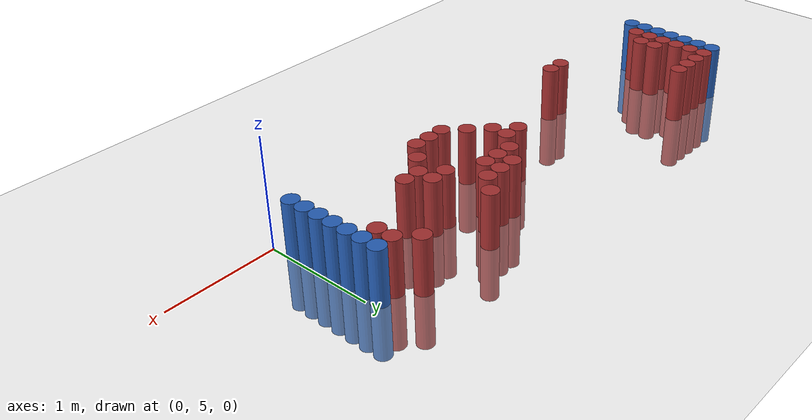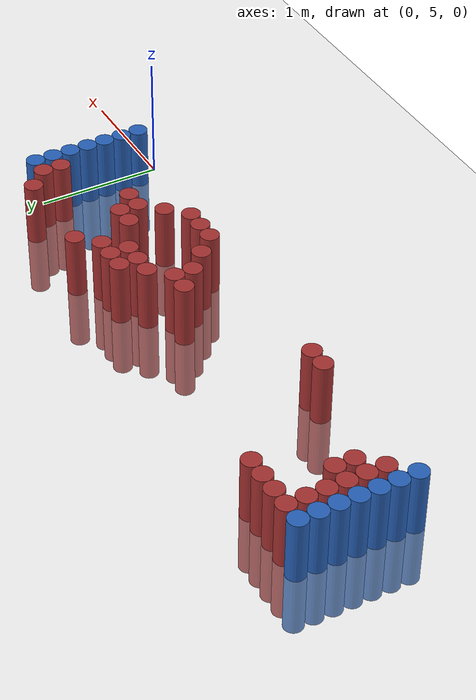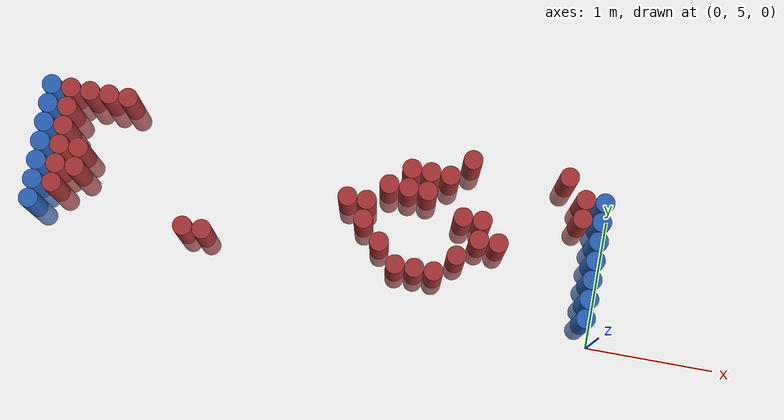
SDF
<sdf version="1.6">
 <world name="default">
  <model name="ground_plane">
   <static>1</static>
   <link name="link">
    <collision name="collision">
     <geometry><plane><normal>0 0 1</normal><size>100 100</size></plane></geometry>
     <surface><friction><ode><mu>100</mu><mu2>50</mu2></ode></friction></surface>
    </collision>
    <visual name="visual">
     <cast_shadows>0</cast_shadows>
     <geometry><plane><normal>0 0 1</normal><size>100 100</size></plane></geometry>
     <material>
      <script><uri>file://media/materials/scripts/gazebo.material</uri><name>Gazebo/Grey</name></script>
     </material>
    </visual>
   </link>
  </model>
  <model name="unit_cylinder_97">
   <static>1</static>
   <pose>-4.425000 5.325000 0.000000 0.000000 0.000000 0.000000</pose>
   <link name="link">
    <inertial>
     <mass>1</mass>
     <inertia><ixx>0.145833</ixx><ixy>0</ixy><ixz>0</ixz><iyy>0.145833</iyy><iyz>0</iyz><izz>0.125</izz></inertia>
    </inertial>
    <collision name="collision">
     <geometry><cylinder><radius>0.075000</radius><length>1</length></cylinder></geometry>
    </collision>
    <visual name="visual">
     <geometry><cylinder><radius>0.075000</radius><length>1</length></cylinder></geometry>
     <material>
      <ambient>0.152000 0.379000 0.720000 1</ambient>
      <diffuse>0.152000 0.379000 0.720000 1</diffuse>
     </material>
     <material>
      <script><name>Gazebo/Grey</name><uri>file://media/materials/scripts/gazebo.material</uri></script>
     </material>
    </visual>
   </link>
  </model>
  <model name="unit_cylinder_98">
   <static>1</static>
   <pose>-4.425000 5.475000 0.000000 0.000000 0.000000 0.000000</pose>
   <link name="link">
    <inertial>
     <mass>1</mass>
     <inertia><ixx>0.145833</ixx><ixy>0</ixy><ixz>0</ixz><iyy>0.145833</iyy><iyz>0</iyz><izz>0.125</izz></inertia>
    </inertial>
    <collision name="collision">
     <geometry><cylinder><radius>0.075000</radius><length>1</length></cylinder></geometry>
    </collision>
    <visual name="visual">
     <geometry><cylinder><radius>0.075000</radius><length>1</length></cylinder></geometry>
     <material>
      <ambient>0.152000 0.379000 0.720000 1</ambient>
      <diffuse>0.152000 0.379000 0.720000 1</diffuse>
     </material>
     <material>
      <script><name>Gazebo/Grey</name><uri>file://media/materials/scripts/gazebo.material</uri></script>
     </material>
    </visual>
   </link>
  </model>
  <model name="unit_cylinder_99">
   <static>1</static>
   <pose>-4.425000 5.625000 0.000000 0.000000 0.000000 0.000000</pose>
   <link name="link">
    <inertial>
     <mass>1</mass>
     <inertia><ixx>0.145833</ixx><ixy>0</ixy><ixz>0</ixz><iyy>0.145833</iyy><iyz>0</iyz><izz>0.125</izz></inertia>
    </inertial>
    <collision name="collision">
     <geometry><cylinder><radius>0.075000</radius><length>1</length></cylinder></geometry>
    </collision>
    <visual name="visual">
     <geometry><cylinder><radius>0.075000</radius><length>1</length></cylinder></geometry>
     <material>
      <ambient>0.152000 0.379000 0.720000 1</ambient>
      <diffuse>0.152000 0.379000 0.720000 1</diffuse>
     </material>
     <material>
      <script><name>Gazebo/Grey</name><uri>file://media/materials/scripts/gazebo.material</uri></script>
     </material>
    </visual>
   </link>
  </model>
  <model name="unit_cylinder_100">
   <static>1</static>
   <pose>-4.425000 5.775000 0.000000 0.000000 0.000000 0.000000</pose>
   <link name="link">
    <inertial>
     <mass>1</mass>
     <inertia><ixx>0.145833</ixx><ixy>0</ixy><ixz>0</ixz><iyy>0.145833</iyy><iyz>0</iyz><izz>0.125</izz></inertia>
    </inertial>
    <collision name="collision">
     <geometry><cylinder><radius>0.075000</radius><length>1</length></cylinder></geometry>
    </collision>
    <visual name="visual">
     <geometry><cylinder><radius>0.075000</radius><length>1</length></cylinder></geometry>
     <material>
      <ambient>0.152000 0.379000 0.720000 1</ambient>
      <diffuse>0.152000 0.379000 0.720000 1</diffuse>
     </material>
     <material>
      <script><name>Gazebo/Grey</name><uri>file://media/materials/scripts/gazebo.material</uri></script>
     </material>
    </visual>
   </link>
  </model>
  <model name="unit_cylinder_101">
   <static>1</static>
   <pose>-4.425000 5.925000 0.000000 0.000000 0.000000 0.000000</pose>
   <link name="link">
    <inertial>
     <mass>1</mass>
     <inertia><ixx>0.145833</ixx><ixy>0</ixy><ixz>0</ixz><iyy>0.145833</iyy><iyz>0</iyz><izz>0.125</izz></inertia>
    </inertial>
    <collision name="collision">
     <geometry><cylinder><radius>0.075000</radius><length>1</length></cylinder></geometry>
    </collision>
    <visual name="visual">
     <geometry><cylinder><radius>0.075000</radius><length>1</length></cylinder></geometry>
     <material>
      <ambient>0.152000 0.379000 0.720000 1</ambient>
      <diffuse>0.152000 0.379000 0.720000 1</diffuse>
     </material>
     <material>
      <script><name>Gazebo/Grey</name><uri>file://media/materials/scripts/gazebo.material</uri></script>
     </material>
    </visual>
   </link>
  </model>
  <model name="unit_cylinder_102">
   <static>1</static>
   <pose>-4.425000 6.075000 0.000000 0.000000 0.000000 0.000000</pose>
   <link name="link">
    <inertial>
     <mass>1</mass>
     <inertia><ixx>0.145833</ixx><ixy>0</ixy><ixz>0</ixz><iyy>0.145833</iyy><iyz>0</iyz><izz>0.125</izz></inertia>
    </inertial>
    <collision name="collision">
     <geometry><cylinder><radius>0.075000</radius><length>1</length></cylinder></geometry>
    </collision>
    <visual name="visual">
     <geometry><cylinder><radius>0.075000</radius><length>1</length></cylinder></geometry>
     <material>
      <ambient>0.152000 0.379000 0.720000 1</ambient>
      <diffuse>0.152000 0.379000 0.720000 1</diffuse>
     </material>
     <material>
      <script><name>Gazebo/Grey</name><uri>file://media/materials/scripts/gazebo.material</uri></script>
     </material>
    </visual>
   </link>
  </model>
  <model name="unit_cylinder_103">
   <static>1</static>
   <pose>-4.425000 6.225000 0.000000 0.000000 0.000000 0.000000</pose>
   <link name="link">
    <inertial>
     <mass>1</mass>
     <inertia><ixx>0.145833</ixx><ixy>0</ixy><ixz>0</ixz><iyy>0.145833</iyy><iyz>0</iyz><izz>0.125</izz></inertia>
    </inertial>
    <collision name="collision">
     <geometry><cylinder><radius>0.075000</radius><length>1</length></cylinder></geometry>
    </collision>
    <visual name="visual">
     <geometry><cylinder><radius>0.075000</radius><length>1</length></cylinder></geometry>
     <material>
      <ambient>0.152000 0.379000 0.720000 1</ambient>
      <diffuse>0.152000 0.379000 0.720000 1</diffuse>
     </material>
     <material>
      <script><name>Gazebo/Grey</name><uri>file://media/materials/scripts/gazebo.material</uri></script>
     </material>
    </visual>
   </link>
  </model>
  <model name="unit_cylinder_126">
   <static>1</static>
   <pose>-4.275000 5.475000 0.000000 0.000000 0.000000 0.000000</pose>
   <link name="link">
    <inertial>
     <mass>1</mass>
     <inertia><ixx>0.145833</ixx><ixy>0</ixy><ixz>0</ixz><iyy>0.145833</iyy><iyz>0</iyz><izz>0.125</izz></inertia>
    </inertial>
    <collision name="collision">
     <geometry><cylinder><radius>0.075000</radius><length>1</length></cylinder></geometry>
    </collision>
    <visual name="visual">
     <geometry><cylinder><radius>0.075000</radius><length>1</length></cylinder></geometry>
     <material>
      <ambient>0.648000 0.192000 0.192000 1</ambient>
      <diffuse>0.648000 0.192000 0.192000 1</diffuse>
     </material>
     <material>
      <script><name>Gazebo/Grey</name><uri>file://media/materials/scripts/gazebo.material</uri></script>
     </material>
    </visual>
   </link>
  </model>
  <model name="unit_cylinder_127">
   <static>1</static>
   <pose>-4.275000 5.625000 0.000000 0.000000 0.000000 0.000000</pose>
   <link name="link">
    <inertial>
     <mass>1</mass>
     <inertia><ixx>0.145833</ixx><ixy>0</ixy><ixz>0</ixz><iyy>0.145833</iyy><iyz>0</iyz><izz>0.125</izz></inertia>
    </inertial>
    <collision name="collision">
     <geometry><cylinder><radius>0.075000</radius><length>1</length></cylinder></geometry>
    </collision>
    <visual name="visual">
     <geometry><cylinder><radius>0.075000</radius><length>1</length></cylinder></geometry>
     <material>
      <ambient>0.648000 0.192000 0.192000 1</ambient>
      <diffuse>0.648000 0.192000 0.192000 1</diffuse>
     </material>
     <material>
      <script><name>Gazebo/Grey</name><uri>file://media/materials/scripts/gazebo.material</uri></script>
     </material>
    </visual>
   </link>
  </model>
  <model name="unit_cylinder_128">
   <static>1</static>
   <pose>-4.275000 5.775000 0.000000 0.000000 0.000000 0.000000</pose>
   <link name="link">
    <inertial>
     <mass>1</mass>
     <inertia><ixx>0.145833</ixx><ixy>0</ixy><ixz>0</ixz><iyy>0.145833</iyy><iyz>0</iyz><izz>0.125</izz></inertia>
    </inertial>
    <collision name="collision">
     <geometry><cylinder><radius>0.075000</radius><length>1</length></cylinder></geometry>
    </collision>
    <visual name="visual">
     <geometry><cylinder><radius>0.075000</radius><length>1</length></cylinder></geometry>
     <material>
      <ambient>0.648000 0.192000 0.192000 1</ambient>
      <diffuse>0.648000 0.192000 0.192000 1</diffuse>
     </material>
     <material>
      <script><name>Gazebo/Grey</name><uri>file://media/materials/scripts/gazebo.material</uri></script>
     </material>
    </visual>
   </link>
  </model>
  <model name="unit_cylinder_129">
   <static>1</static>
   <pose>-4.275000 5.925000 0.000000 0.000000 0.000000 0.000000</pose>
   <link name="link">
    <inertial>
     <mass>1</mass>
     <inertia><ixx>0.145833</ixx><ixy>0</ixy><ixz>0</ixz><iyy>0.145833</iyy><iyz>0</iyz><izz>0.125</izz></inertia>
    </inertial>
    <collision name="collision">
     <geometry><cylinder><radius>0.075000</radius><length>1</length></cylinder></geometry>
    </collision>
    <visual name="visual">
     <geometry><cylinder><radius>0.075000</radius><length>1</length></cylinder></geometry>
     <material>
      <ambient>0.648000 0.192000 0.192000 1</ambient>
      <diffuse>0.648000 0.192000 0.192000 1</diffuse>
     </material>
     <material>
      <script><name>Gazebo/Grey</name><uri>file://media/materials/scripts/gazebo.material</uri></script>
     </material>
    </visual>
   </link>
  </model>
  <model name="unit_cylinder_130">
   <static>1</static>
   <pose>-4.275000 6.075000 0.000000 0.000000 0.000000 0.000000</pose>
   <link name="link">
    <inertial>
     <mass>1</mass>
     <inertia><ixx>0.145833</ixx><ixy>0</ixy><ixz>0</ixz><iyy>0.145833</iyy><iyz>0</iyz><izz>0.125</izz></inertia>
    </inertial>
    <collision name="collision">
     <geometry><cylinder><radius>0.075000</radius><length>1</length></cylinder></geometry>
    </collision>
    <visual name="visual">
     <geometry><cylinder><radius>0.075000</radius><length>1</length></cylinder></geometry>
     <material>
      <ambient>0.648000 0.192000 0.192000 1</ambient>
      <diffuse>0.648000 0.192000 0.192000 1</diffuse>
     </material>
     <material>
      <script><name>Gazebo/Grey</name><uri>file://media/materials/scripts/gazebo.material</uri></script>
     </material>
    </visual>
   </link>
  </model>
  <model name="unit_cylinder_131">
   <static>1</static>
   <pose>-4.275000 6.225000 0.000000 0.000000 0.000000 0.000000</pose>
   <link name="link">
    <inertial>
     <mass>1</mass>
     <inertia><ixx>0.145833</ixx><ixy>0</ixy><ixz>0</ixz><iyy>0.145833</iyy><iyz>0</iyz><izz>0.125</izz></inertia>
    </inertial>
    <collision name="collision">
     <geometry><cylinder><radius>0.075000</radius><length>1</length></cylinder></geometry>
    </collision>
    <visual name="visual">
     <geometry><cylinder><radius>0.075000</radius><length>1</length></cylinder></geometry>
     <material>
      <ambient>0.648000 0.192000 0.192000 1</ambient>
      <diffuse>0.648000 0.192000 0.192000 1</diffuse>
     </material>
     <material>
      <script><name>Gazebo/Grey</name><uri>file://media/materials/scripts/gazebo.material</uri></script>
     </material>
    </visual>
   </link>
  </model>
  <model name="unit_cylinder_149">
   <static>1</static>
   <pose>-4.125000 5.625000 0.000000 0.000000 0.000000 0.000000</pose>
   <link name="link">
    <inertial>
     <mass>1</mass>
     <inertia><ixx>0.145833</ixx><ixy>0</ixy><ixz>0</ixz><iyy>0.145833</iyy><iyz>0</iyz><izz>0.125</izz></inertia>
    </inertial>
    <collision name="collision">
     <geometry><cylinder><radius>0.075000</radius><length>1</length></cylinder></geometry>
    </collision>
    <visual name="visual">
     <geometry><cylinder><radius>0.075000</radius><length>1</length></cylinder></geometry>
     <material>
      <ambient>0.648000 0.192000 0.192000 1</ambient>
      <diffuse>0.648000 0.192000 0.192000 1</diffuse>
     </material>
     <material>
      <script><name>Gazebo/Grey</name><uri>file://media/materials/scripts/gazebo.material</uri></script>
     </material>
    </visual>
   </link>
  </model>
  <model name="unit_cylinder_150">
   <static>1</static>
   <pose>-4.125000 5.775000 0.000000 0.000000 0.000000 0.000000</pose>
   <link name="link">
    <inertial>
     <mass>1</mass>
     <inertia><ixx>0.145833</ixx><ixy>0</ixy><ixz>0</ixz><iyy>0.145833</iyy><iyz>0</iyz><izz>0.125</izz></inertia>
    </inertial>
    <collision name="collision">
     <geometry><cylinder><radius>0.075000</radius><length>1</length></cylinder></geometry>
    </collision>
    <visual name="visual">
     <geometry><cylinder><radius>0.075000</radius><length>1</length></cylinder></geometry>
     <material>
      <ambient>0.648000 0.192000 0.192000 1</ambient>
      <diffuse>0.648000 0.192000 0.192000 1</diffuse>
     </material>
     <material>
      <script><name>Gazebo/Grey</name><uri>file://media/materials/scripts/gazebo.material</uri></script>
     </material>
    </visual>
   </link>
  </model>
  <model name="unit_cylinder_151">
   <static>1</static>
   <pose>-4.125000 6.225000 0.000000 0.000000 0.000000 0.000000</pose>
   <link name="link">
    <inertial>
     <mass>1</mass>
     <inertia><ixx>0.145833</ixx><ixy>0</ixy><ixz>0</ixz><iyy>0.145833</iyy><iyz>0</iyz><izz>0.125</izz></inertia>
    </inertial>
    <collision name="collision">
     <geometry><cylinder><radius>0.075000</radius><length>1</length></cylinder></geometry>
    </collision>
    <visual name="visual">
     <geometry><cylinder><radius>0.075000</radius><length>1</length></cylinder></geometry>
     <material>
      <ambient>0.648000 0.192000 0.192000 1</ambient>
      <diffuse>0.648000 0.192000 0.192000 1</diffuse>
     </material>
     <material>
      <script><name>Gazebo/Grey</name><uri>file://media/materials/scripts/gazebo.material</uri></script>
     </material>
    </visual>
   </link>
  </model>
  <model name="unit_cylinder_162">
   <static>1</static>
   <pose>-3.975000 6.225000 0.000000 0.000000 0.000000 0.000000</pose>
   <link name="link">
    <inertial>
     <mass>1</mass>
     <inertia><ixx>0.145833</ixx><ixy>0</ixy><ixz>0</ixz><iyy>0.145833</iyy><iyz>0</iyz><izz>0.125</izz></inertia>
    </inertial>
    <collision name="collision">
     <geometry><cylinder><radius>0.075000</radius><length>1</length></cylinder></geometry>
    </collision>
    <visual name="visual">
     <geometry><cylinder><radius>0.075000</radius><length>1</length></cylinder></geometry>
     <material>
      <ambient>0.648000 0.192000 0.192000 1</ambient>
      <diffuse>0.648000 0.192000 0.192000 1</diffuse>
     </material>
     <material>
      <script><name>Gazebo/Grey</name><uri>file://media/materials/scripts/gazebo.material</uri></script>
     </material>
    </visual>
   </link>
  </model>
  <model name="unit_cylinder_168">
   <static>1</static>
   <pose>-3.825000 6.225000 0.000000 0.000000 0.000000 0.000000</pose>
   <link name="link">
    <inertial>
     <mass>1</mass>
     <inertia><ixx>0.145833</ixx><ixy>0</ixy><ixz>0</ixz><iyy>0.145833</iyy><iyz>0</iyz><izz>0.125</izz></inertia>
    </inertial>
    <collision name="collision">
     <geometry><cylinder><radius>0.075000</radius><length>1</length></cylinder></geometry>
    </collision>
    <visual name="visual">
     <geometry><cylinder><radius>0.075000</radius><length>1</length></cylinder></geometry>
     <material>
      <ambient>0.648000 0.192000 0.192000 1</ambient>
      <diffuse>0.648000 0.192000 0.192000 1</diffuse>
     </material>
     <material>
      <script><name>Gazebo/Grey</name><uri>file://media/materials/scripts/gazebo.material</uri></script>
     </material>
    </visual>
   </link>
  </model>
  <model name="unit_cylinder_196">
   <static>1</static>
   <pose>-3.225000 5.325000 0.000000 0.000000 0.000000 0.000000</pose>
   <link name="link">
    <inertial>
     <mass>1</mass>
     <inertia><ixx>0.145833</ixx><ixy>0</ixy><ixz>0</ixz><iyy>0.145833</iyy><iyz>0</iyz><izz>0.125</izz></inertia>
    </inertial>
    <collision name="collision">
     <geometry><cylinder><radius>0.075000</radius><length>1</length></cylinder></geometry>
    </collision>
    <visual name="visual">
     <geometry><cylinder><radius>0.075000</radius><length>1</length></cylinder></geometry>
     <material>
      <ambient>0.648000 0.192000 0.192000 1</ambient>
      <diffuse>0.648000 0.192000 0.192000 1</diffuse>
     </material>
     <material>
      <script><name>Gazebo/Grey</name><uri>file://media/materials/scripts/gazebo.material</uri></script>
     </material>
    </visual>
   </link>
  </model>
  <model name="unit_cylinder_203">
   <static>1</static>
   <pose>-3.075000 5.325000 0.000000 0.000000 0.000000 0.000000</pose>
   <link name="link">
    <inertial>
     <mass>1</mass>
     <inertia><ixx>0.145833</ixx><ixy>0</ixy><ixz>0</ixz><iyy>0.145833</iyy><iyz>0</iyz><izz>0.125</izz></inertia>
    </inertial>
    <collision name="collision">
     <geometry><cylinder><radius>0.075000</radius><length>1</length></cylinder></geometry>
    </collision>
    <visual name="visual">
     <geometry><cylinder><radius>0.075000</radius><length>1</length></cylinder></geometry>
     <material>
      <ambient>0.648000 0.192000 0.192000 1</ambient>
      <diffuse>0.648000 0.192000 0.192000 1</diffuse>
     </material>
     <material>
      <script><name>Gazebo/Grey</name><uri>file://media/materials/scripts/gazebo.material</uri></script>
     </material>
    </visual>
   </link>
  </model>
  <model name="unit_cylinder_242">
   <static>1</static>
   <pose>-2.025000 5.775000 0.000000 0.000000 0.000000 0.000000</pose>
   <link name="link">
    <inertial>
     <mass>1</mass>
     <inertia><ixx>0.145833</ixx><ixy>0</ixy><ixz>0</ixz><iyy>0.145833</iyy><iyz>0</iyz><izz>0.125</izz></inertia>
    </inertial>
    <collision name="collision">
     <geometry><cylinder><radius>0.075000</radius><length>1</length></cylinder></geometry>
    </collision>
    <visual name="visual">
     <geometry><cylinder><radius>0.075000</radius><length>1</length></cylinder></geometry>
     <material>
      <ambient>0.648000 0.192000 0.192000 1</ambient>
      <diffuse>0.648000 0.192000 0.192000 1</diffuse>
     </material>
     <material>
      <script><name>Gazebo/Grey</name><uri>file://media/materials/scripts/gazebo.material</uri></script>
     </material>
    </visual>
   </link>
  </model>
  <model name="unit_cylinder_243">
   <static>1</static>
   <pose>-1.875000 5.625000 0.000000 0.000000 0.000000 0.000000</pose>
   <link name="link">
    <inertial>
     <mass>1</mass>
     <inertia><ixx>0.145833</ixx><ixy>0</ixy><ixz>0</ixz><iyy>0.145833</iyy><iyz>0</iyz><izz>0.125</izz></inertia>
    </inertial>
    <collision name="collision">
     <geometry><cylinder><radius>0.075000</radius><length>1</length></cylinder></geometry>
    </collision>
    <visual name="visual">
     <geometry><cylinder><radius>0.075000</radius><length>1</length></cylinder></geometry>
     <material>
      <ambient>0.648000 0.192000 0.192000 1</ambient>
      <diffuse>0.648000 0.192000 0.192000 1</diffuse>
     </material>
     <material>
      <script><name>Gazebo/Grey</name><uri>file://media/materials/scripts/gazebo.material</uri></script>
     </material>
    </visual>
   </link>
  </model>
  <model name="unit_cylinder_244">
   <static>1</static>
   <pose>-1.875000 5.775000 0.000000 0.000000 0.000000 0.000000</pose>
   <link name="link">
    <inertial>
     <mass>1</mass>
     <inertia><ixx>0.145833</ixx><ixy>0</ixy><ixz>0</ixz><iyy>0.145833</iyy><iyz>0</iyz><izz>0.125</izz></inertia>
    </inertial>
    <collision name="collision">
     <geometry><cylinder><radius>0.075000</radius><length>1</length></cylinder></geometry>
    </collision>
    <visual name="visual">
     <geometry><cylinder><radius>0.075000</radius><length>1</length></cylinder></geometry>
     <material>
      <ambient>0.648000 0.192000 0.192000 1</ambient>
      <diffuse>0.648000 0.192000 0.192000 1</diffuse>
     </material>
     <material>
      <script><name>Gazebo/Grey</name><uri>file://media/materials/scripts/gazebo.material</uri></script>
     </material>
    </visual>
   </link>
  </model>
  <model name="unit_cylinder_245">
   <static>1</static>
   <pose>-1.725000 5.475000 0.000000 0.000000 0.000000 0.000000</pose>
   <link name="link">
    <inertial>
     <mass>1</mass>
     <inertia><ixx>0.145833</ixx><ixy>0</ixy><ixz>0</ixz><iyy>0.145833</iyy><iyz>0</iyz><izz>0.125</izz></inertia>
    </inertial>
    <collision name="collision">
     <geometry><cylinder><radius>0.075000</radius><length>1</length></cylinder></geometry>
    </collision>
    <visual name="visual">
     <geometry><cylinder><radius>0.075000</radius><length>1</length></cylinder></geometry>
     <material>
      <ambient>0.648000 0.192000 0.192000 1</ambient>
      <diffuse>0.648000 0.192000 0.192000 1</diffuse>
     </material>
     <material>
      <script><name>Gazebo/Grey</name><uri>file://media/materials/scripts/gazebo.material</uri></script>
     </material>
    </visual>
   </link>
  </model>
  <model name="unit_cylinder_246">
   <static>1</static>
   <pose>-1.725000 5.925000 0.000000 0.000000 0.000000 0.000000</pose>
   <link name="link">
    <inertial>
     <mass>1</mass>
     <inertia><ixx>0.145833</ixx><ixy>0</ixy><ixz>0</ixz><iyy>0.145833</iyy><iyz>0</iyz><izz>0.125</izz></inertia>
    </inertial>
    <collision name="collision">
     <geometry><cylinder><radius>0.075000</radius><length>1</length></cylinder></geometry>
    </collision>
    <visual name="visual">
     <geometry><cylinder><radius>0.075000</radius><length>1</length></cylinder></geometry>
     <material>
      <ambient>0.648000 0.192000 0.192000 1</ambient>
      <diffuse>0.648000 0.192000 0.192000 1</diffuse>
     </material>
     <material>
      <script><name>Gazebo/Grey</name><uri>file://media/materials/scripts/gazebo.material</uri></script>
     </material>
    </visual>
   </link>
  </model>
  <model name="unit_cylinder_247">
   <static>1</static>
   <pose>-1.575000 5.325000 0.000000 0.000000 0.000000 0.000000</pose>
   <link name="link">
    <inertial>
     <mass>1</mass>
     <inertia><ixx>0.145833</ixx><ixy>0</ixy><ixz>0</ixz><iyy>0.145833</iyy><iyz>0</iyz><izz>0.125</izz></inertia>
    </inertial>
    <collision name="collision">
     <geometry><cylinder><radius>0.075000</radius><length>1</length></cylinder></geometry>
    </collision>
    <visual name="visual">
     <geometry><cylinder><radius>0.075000</radius><length>1</length></cylinder></geometry>
     <material>
      <ambient>0.648000 0.192000 0.192000 1</ambient>
      <diffuse>0.648000 0.192000 0.192000 1</diffuse>
     </material>
     <material>
      <script><name>Gazebo/Grey</name><uri>file://media/materials/scripts/gazebo.material</uri></script>
     </material>
    </visual>
   </link>
  </model>
  <model name="unit_cylinder_248">
   <static>1</static>
   <pose>-1.575000 5.925000 0.000000 0.000000 0.000000 0.000000</pose>
   <link name="link">
    <inertial>
     <mass>1</mass>
     <inertia><ixx>0.145833</ixx><ixy>0</ixy><ixz>0</ixz><iyy>0.145833</iyy><iyz>0</iyz><izz>0.125</izz></inertia>
    </inertial>
    <collision name="collision">
     <geometry><cylinder><radius>0.075000</radius><length>1</length></cylinder></geometry>
    </collision>
    <visual name="visual">
     <geometry><cylinder><radius>0.075000</radius><length>1</length></cylinder></geometry>
     <material>
      <ambient>0.648000 0.192000 0.192000 1</ambient>
      <diffuse>0.648000 0.192000 0.192000 1</diffuse>
     </material>
     <material>
      <script><name>Gazebo/Grey</name><uri>file://media/materials/scripts/gazebo.material</uri></script>
     </material>
    </visual>
   </link>
  </model>
  <model name="unit_cylinder_249">
   <static>1</static>
   <pose>-1.575000 6.075000 0.000000 0.000000 0.000000 0.000000</pose>
   <link name="link">
    <inertial>
     <mass>1</mass>
     <inertia><ixx>0.145833</ixx><ixy>0</ixy><ixz>0</ixz><iyy>0.145833</iyy><iyz>0</iyz><izz>0.125</izz></inertia>
    </inertial>
    <collision name="collision">
     <geometry><cylinder><radius>0.075000</radius><length>1</length></cylinder></geometry>
    </collision>
    <visual name="visual">
     <geometry><cylinder><radius>0.075000</radius><length>1</length></cylinder></geometry>
     <material>
      <ambient>0.648000 0.192000 0.192000 1</ambient>
      <diffuse>0.648000 0.192000 0.192000 1</diffuse>
     </material>
     <material>
      <script><name>Gazebo/Grey</name><uri>file://media/materials/scripts/gazebo.material</uri></script>
     </material>
    </visual>
   </link>
  </model>
  <model name="unit_cylinder_250">
   <static>1</static>
   <pose>-1.425000 5.325000 0.000000 0.000000 0.000000 0.000000</pose>
   <link name="link">
    <inertial>
     <mass>1</mass>
     <inertia><ixx>0.145833</ixx><ixy>0</ixy><ixz>0</ixz><iyy>0.145833</iyy><iyz>0</iyz><izz>0.125</izz></inertia>
    </inertial>
    <collision name="collision">
     <geometry><cylinder><radius>0.075000</radius><length>1</length></cylinder></geometry>
    </collision>
    <visual name="visual">
     <geometry><cylinder><radius>0.075000</radius><length>1</length></cylinder></geometry>
     <material>
      <ambient>0.648000 0.192000 0.192000 1</ambient>
      <diffuse>0.648000 0.192000 0.192000 1</diffuse>
     </material>
     <material>
      <script><name>Gazebo/Grey</name><uri>file://media/materials/scripts/gazebo.material</uri></script>
     </material>
    </visual>
   </link>
  </model>
  <model name="unit_cylinder_251">
   <static>1</static>
   <pose>-1.425000 5.925000 0.000000 0.000000 0.000000 0.000000</pose>
   <link name="link">
    <inertial>
     <mass>1</mass>
     <inertia><ixx>0.145833</ixx><ixy>0</ixy><ixz>0</ixz><iyy>0.145833</iyy><iyz>0</iyz><izz>0.125</izz></inertia>
    </inertial>
    <collision name="collision">
     <geometry><cylinder><radius>0.075000</radius><length>1</length></cylinder></geometry>
    </collision>
    <visual name="visual">
     <geometry><cylinder><radius>0.075000</radius><length>1</length></cylinder></geometry>
     <material>
      <ambient>0.648000 0.192000 0.192000 1</ambient>
      <diffuse>0.648000 0.192000 0.192000 1</diffuse>
     </material>
     <material>
      <script><name>Gazebo/Grey</name><uri>file://media/materials/scripts/gazebo.material</uri></script>
     </material>
    </visual>
   </link>
  </model>
  <model name="unit_cylinder_252">
   <static>1</static>
   <pose>-1.425000 6.075000 0.000000 0.000000 0.000000 0.000000</pose>
   <link name="link">
    <inertial>
     <mass>1</mass>
     <inertia><ixx>0.145833</ixx><ixy>0</ixy><ixz>0</ixz><iyy>0.145833</iyy><iyz>0</iyz><izz>0.125</izz></inertia>
    </inertial>
    <collision name="collision">
     <geometry><cylinder><radius>0.075000</radius><length>1</length></cylinder></geometry>
    </collision>
    <visual name="visual">
     <geometry><cylinder><radius>0.075000</radius><length>1</length></cylinder></geometry>
     <material>
      <ambient>0.648000 0.192000 0.192000 1</ambient>
      <diffuse>0.648000 0.192000 0.192000 1</diffuse>
     </material>
     <material>
      <script><name>Gazebo/Grey</name><uri>file://media/materials/scripts/gazebo.material</uri></script>
     </material>
    </visual>
   </link>
  </model>
  <model name="unit_cylinder_254">
   <static>1</static>
   <pose>-1.275000 5.325000 0.000000 0.000000 0.000000 0.000000</pose>
   <link name="link">
    <inertial>
     <mass>1</mass>
     <inertia><ixx>0.145833</ixx><ixy>0</ixy><ixz>0</ixz><iyy>0.145833</iyy><iyz>0</iyz><izz>0.125</izz></inertia>
    </inertial>
    <collision name="collision">
     <geometry><cylinder><radius>0.075000</radius><length>1</length></cylinder></geometry>
    </collision>
    <visual name="visual">
     <geometry><cylinder><radius>0.075000</radius><length>1</length></cylinder></geometry>
     <material>
      <ambient>0.648000 0.192000 0.192000 1</ambient>
      <diffuse>0.648000 0.192000 0.192000 1</diffuse>
     </material>
     <material>
      <script><name>Gazebo/Grey</name><uri>file://media/materials/scripts/gazebo.material</uri></script>
     </material>
    </visual>
   </link>
  </model>
  <model name="unit_cylinder_255">
   <static>1</static>
   <pose>-1.275000 6.075000 0.000000 0.000000 0.000000 0.000000</pose>
   <link name="link">
    <inertial>
     <mass>1</mass>
     <inertia><ixx>0.145833</ixx><ixy>0</ixy><ixz>0</ixz><iyy>0.145833</iyy><iyz>0</iyz><izz>0.125</izz></inertia>
    </inertial>
    <collision name="collision">
     <geometry><cylinder><radius>0.075000</radius><length>1</length></cylinder></geometry>
    </collision>
    <visual name="visual">
     <geometry><cylinder><radius>0.075000</radius><length>1</length></cylinder></geometry>
     <material>
      <ambient>0.648000 0.192000 0.192000 1</ambient>
      <diffuse>0.648000 0.192000 0.192000 1</diffuse>
     </material>
     <material>
      <script><name>Gazebo/Grey</name><uri>file://media/materials/scripts/gazebo.material</uri></script>
     </material>
    </visual>
   </link>
  </model>
  <model name="unit_cylinder_258">
   <static>1</static>
   <pose>-1.125000 5.475000 0.000000 0.000000 0.000000 0.000000</pose>
   <link name="link">
    <inertial>
     <mass>1</mass>
     <inertia><ixx>0.145833</ixx><ixy>0</ixy><ixz>0</ixz><iyy>0.145833</iyy><iyz>0</iyz><izz>0.125</izz></inertia>
    </inertial>
    <collision name="collision">
     <geometry><cylinder><radius>0.075000</radius><length>1</length></cylinder></geometry>
    </collision>
    <visual name="visual">
     <geometry><cylinder><radius>0.075000</radius><length>1</length></cylinder></geometry>
     <material>
      <ambient>0.648000 0.192000 0.192000 1</ambient>
      <diffuse>0.648000 0.192000 0.192000 1</diffuse>
     </material>
     <material>
      <script><name>Gazebo/Grey</name><uri>file://media/materials/scripts/gazebo.material</uri></script>
     </material>
    </visual>
   </link>
  </model>
  <model name="unit_cylinder_259">
   <static>1</static>
   <pose>-1.125000 5.775000 0.000000 0.000000 0.000000 0.000000</pose>
   <link name="link">
    <inertial>
     <mass>1</mass>
     <inertia><ixx>0.145833</ixx><ixy>0</ixy><ixz>0</ixz><iyy>0.145833</iyy><iyz>0</iyz><izz>0.125</izz></inertia>
    </inertial>
    <collision name="collision">
     <geometry><cylinder><radius>0.075000</radius><length>1</length></cylinder></geometry>
    </collision>
    <visual name="visual">
     <geometry><cylinder><radius>0.075000</radius><length>1</length></cylinder></geometry>
     <material>
      <ambient>0.648000 0.192000 0.192000 1</ambient>
      <diffuse>0.648000 0.192000 0.192000 1</diffuse>
     </material>
     <material>
      <script><name>Gazebo/Grey</name><uri>file://media/materials/scripts/gazebo.material</uri></script>
     </material>
    </visual>
   </link>
  </model>
  <model name="unit_cylinder_260">
   <static>1</static>
   <pose>-1.125000 6.225000 0.000000 0.000000 0.000000 0.000000</pose>
   <link name="link">
    <inertial>
     <mass>1</mass>
     <inertia><ixx>0.145833</ixx><ixy>0</ixy><ixz>0</ixz><iyy>0.145833</iyy><iyz>0</iyz><izz>0.125</izz></inertia>
    </inertial>
    <collision name="collision">
     <geometry><cylinder><radius>0.075000</radius><length>1</length></cylinder></geometry>
    </collision>
    <visual name="visual">
     <geometry><cylinder><radius>0.075000</radius><length>1</length></cylinder></geometry>
     <material>
      <ambient>0.648000 0.192000 0.192000 1</ambient>
      <diffuse>0.648000 0.192000 0.192000 1</diffuse>
     </material>
     <material>
      <script><name>Gazebo/Grey</name><uri>file://media/materials/scripts/gazebo.material</uri></script>
     </material>
    </visual>
   </link>
  </model>
  <model name="unit_cylinder_264">
   <static>1</static>
   <pose>-0.975000 5.625000 0.000000 0.000000 0.000000 0.000000</pose>
   <link name="link">
    <inertial>
     <mass>1</mass>
     <inertia><ixx>0.145833</ixx><ixy>0</ixy><ixz>0</ixz><iyy>0.145833</iyy><iyz>0</iyz><izz>0.125</izz></inertia>
    </inertial>
    <collision name="collision">
     <geometry><cylinder><radius>0.075000</radius><length>1</length></cylinder></geometry>
    </collision>
    <visual name="visual">
     <geometry><cylinder><radius>0.075000</radius><length>1</length></cylinder></geometry>
     <material>
      <ambient>0.648000 0.192000 0.192000 1</ambient>
      <diffuse>0.648000 0.192000 0.192000 1</diffuse>
     </material>
     <material>
      <script><name>Gazebo/Grey</name><uri>file://media/materials/scripts/gazebo.material</uri></script>
     </material>
    </visual>
   </link>
  </model>
  <model name="unit_cylinder_265">
   <static>1</static>
   <pose>-0.975000 5.775000 0.000000 0.000000 0.000000 0.000000</pose>
   <link name="link">
    <inertial>
     <mass>1</mass>
     <inertia><ixx>0.145833</ixx><ixy>0</ixy><ixz>0</ixz><iyy>0.145833</iyy><iyz>0</iyz><izz>0.125</izz></inertia>
    </inertial>
    <collision name="collision">
     <geometry><cylinder><radius>0.075000</radius><length>1</length></cylinder></geometry>
    </collision>
    <visual name="visual">
     <geometry><cylinder><radius>0.075000</radius><length>1</length></cylinder></geometry>
     <material>
      <ambient>0.648000 0.192000 0.192000 1</ambient>
      <diffuse>0.648000 0.192000 0.192000 1</diffuse>
     </material>
     <material>
      <script><name>Gazebo/Grey</name><uri>file://media/materials/scripts/gazebo.material</uri></script>
     </material>
    </visual>
   </link>
  </model>
  <model name="unit_cylinder_273">
   <static>1</static>
   <pose>-0.825000 5.625000 0.000000 0.000000 0.000000 0.000000</pose>
   <link name="link">
    <inertial>
     <mass>1</mass>
     <inertia><ixx>0.145833</ixx><ixy>0</ixy><ixz>0</ixz><iyy>0.145833</iyy><iyz>0</iyz><izz>0.125</izz></inertia>
    </inertial>
    <collision name="collision">
     <geometry><cylinder><radius>0.075000</radius><length>1</length></cylinder></geometry>
    </collision>
    <visual name="visual">
     <geometry><cylinder><radius>0.075000</radius><length>1</length></cylinder></geometry>
     <material>
      <ambient>0.648000 0.192000 0.192000 1</ambient>
      <diffuse>0.648000 0.192000 0.192000 1</diffuse>
     </material>
     <material>
      <script><name>Gazebo/Grey</name><uri>file://media/materials/scripts/gazebo.material</uri></script>
     </material>
    </visual>
   </link>
  </model>
  <model name="unit_cylinder_291">
   <static>1</static>
   <pose>-0.375000 6.225000 0.000000 0.000000 0.000000 0.000000</pose>
   <link name="link">
    <inertial>
     <mass>1</mass>
     <inertia><ixx>0.145833</ixx><ixy>0</ixy><ixz>0</ixz><iyy>0.145833</iyy><iyz>0</iyz><izz>0.125</izz></inertia>
    </inertial>
    <collision name="collision">
     <geometry><cylinder><radius>0.075000</radius><length>1</length></cylinder></geometry>
    </collision>
    <visual name="visual">
     <geometry><cylinder><radius>0.075000</radius><length>1</length></cylinder></geometry>
     <material>
      <ambient>0.648000 0.192000 0.192000 1</ambient>
      <diffuse>0.648000 0.192000 0.192000 1</diffuse>
     </material>
     <material>
      <script><name>Gazebo/Grey</name><uri>file://media/materials/scripts/gazebo.material</uri></script>
     </material>
    </visual>
   </link>
  </model>
  <model name="unit_cylinder_297">
   <static>1</static>
   <pose>-0.225000 5.925000 0.000000 0.000000 0.000000 0.000000</pose>
   <link name="link">
    <inertial>
     <mass>1</mass>
     <inertia><ixx>0.145833</ixx><ixy>0</ixy><ixz>0</ixz><iyy>0.145833</iyy><iyz>0</iyz><izz>0.125</izz></inertia>
    </inertial>
    <collision name="collision">
     <geometry><cylinder><radius>0.075000</radius><length>1</length></cylinder></geometry>
    </collision>
    <visual name="visual">
     <geometry><cylinder><radius>0.075000</radius><length>1</length></cylinder></geometry>
     <material>
      <ambient>0.648000 0.192000 0.192000 1</ambient>
      <diffuse>0.648000 0.192000 0.192000 1</diffuse>
     </material>
     <material>
      <script><name>Gazebo/Grey</name><uri>file://media/materials/scripts/gazebo.material</uri></script>
     </material>
    </visual>
   </link>
  </model>
  <model name="unit_cylinder_298">
   <static>1</static>
   <pose>-0.225000 6.075000 0.000000 0.000000 0.000000 0.000000</pose>
   <link name="link">
    <inertial>
     <mass>1</mass>
     <inertia><ixx>0.145833</ixx><ixy>0</ixy><ixz>0</ixz><iyy>0.145833</iyy><iyz>0</iyz><izz>0.125</izz></inertia>
    </inertial>
    <collision name="collision">
     <geometry><cylinder><radius>0.075000</radius><length>1</length></cylinder></geometry>
    </collision>
    <visual name="visual">
     <geometry><cylinder><radius>0.075000</radius><length>1</length></cylinder></geometry>
     <material>
      <ambient>0.648000 0.192000 0.192000 1</ambient>
      <diffuse>0.648000 0.192000 0.192000 1</diffuse>
     </material>
     <material>
      <script><name>Gazebo/Grey</name><uri>file://media/materials/scripts/gazebo.material</uri></script>
     </material>
    </visual>
   </link>
  </model>
  <model name="unit_cylinder_313">
   <static>1</static>
   <pose>-0.075000 5.175000 0.000000 0.000000 0.000000 0.000000</pose>
   <link name="link">
    <inertial>
     <mass>1</mass>
     <inertia><ixx>0.145833</ixx><ixy>0</ixy><ixz>0</ixz><iyy>0.145833</iyy><iyz>0</iyz><izz>0.125</izz></inertia>
    </inertial>
    <collision name="collision">
     <geometry><cylinder><radius>0.075000</radius><length>1</length></cylinder></geometry>
    </collision>
    <visual name="visual">
     <geometry><cylinder><radius>0.075000</radius><length>1</length></cylinder></geometry>
     <material>
      <ambient>0.152000 0.379000 0.720000 1</ambient>
      <diffuse>0.152000 0.379000 0.720000 1</diffuse>
     </material>
     <material>
      <script><name>Gazebo/Grey</name><uri>file://media/materials/scripts/gazebo.material</uri></script>
     </material>
    </visual>
   </link>
  </model>
  <model name="unit_cylinder_314">
   <static>1</static>
   <pose>-0.075000 5.325000 0.000000 0.000000 0.000000 0.000000</pose>
   <link name="link">
    <inertial>
     <mass>1</mass>
     <inertia><ixx>0.145833</ixx><ixy>0</ixy><ixz>0</ixz><iyy>0.145833</iyy><iyz>0</iyz><izz>0.125</izz></inertia>
    </inertial>
    <collision name="collision">
     <geometry><cylinder><radius>0.075000</radius><length>1</length></cylinder></geometry>
    </collision>
    <visual name="visual">
     <geometry><cylinder><radius>0.075000</radius><length>1</length></cylinder></geometry>
     <material>
      <ambient>0.152000 0.379000 0.720000 1</ambient>
      <diffuse>0.152000 0.379000 0.720000 1</diffuse>
     </material>
     <material>
      <script><name>Gazebo/Grey</name><uri>file://media/materials/scripts/gazebo.material</uri></script>
     </material>
    </visual>
   </link>
  </model>
  <model name="unit_cylinder_315">
   <static>1</static>
   <pose>-0.075000 5.475000 0.000000 0.000000 0.000000 0.000000</pose>
   <link name="link">
    <inertial>
     <mass>1</mass>
     <inertia><ixx>0.145833</ixx><ixy>0</ixy><ixz>0</ixz><iyy>0.145833</iyy><iyz>0</iyz><izz>0.125</izz></inertia>
    </inertial>
    <collision name="collision">
     <geometry><cylinder><radius>0.075000</radius><length>1</length></cylinder></geometry>
    </collision>
    <visual name="visual">
     <geometry><cylinder><radius>0.075000</radius><length>1</length></cylinder></geometry>
     <material>
      <ambient>0.152000 0.379000 0.720000 1</ambient>
      <diffuse>0.152000 0.379000 0.720000 1</diffuse>
     </material>
     <material>
      <script><name>Gazebo/Grey</name><uri>file://media/materials/scripts/gazebo.material</uri></script>
     </material>
    </visual>
   </link>
  </model>
  <model name="unit_cylinder_316">
   <static>1</static>
   <pose>-0.075000 5.625000 0.000000 0.000000 0.000000 0.000000</pose>
   <link name="link">
    <inertial>
     <mass>1</mass>
     <inertia><ixx>0.145833</ixx><ixy>0</ixy><ixz>0</ixz><iyy>0.145833</iyy><iyz>0</iyz><izz>0.125</izz></inertia>
    </inertial>
    <collision name="collision">
     <geometry><cylinder><radius>0.075000</radius><length>1</length></cylinder></geometry>
    </collision>
    <visual name="visual">
     <geometry><cylinder><radius>0.075000</radius><length>1</length></cylinder></geometry>
     <material>
      <ambient>0.152000 0.379000 0.720000 1</ambient>
      <diffuse>0.152000 0.379000 0.720000 1</diffuse>
     </material>
     <material>
      <script><name>Gazebo/Grey</name><uri>file://media/materials/scripts/gazebo.material</uri></script>
     </material>
    </visual>
   </link>
  </model>
  <model name="unit_cylinder_317">
   <static>1</static>
   <pose>-0.075000 5.775000 0.000000 0.000000 0.000000 0.000000</pose>
   <link name="link">
    <inertial>
     <mass>1</mass>
     <inertia><ixx>0.145833</ixx><ixy>0</ixy><ixz>0</ixz><iyy>0.145833</iyy><iyz>0</iyz><izz>0.125</izz></inertia>
    </inertial>
    <collision name="collision">
     <geometry><cylinder><radius>0.075000</radius><length>1</length></cylinder></geometry>
    </collision>
    <visual name="visual">
     <geometry><cylinder><radius>0.075000</radius><length>1</length></cylinder></geometry>
     <material>
      <ambient>0.152000 0.379000 0.720000 1</ambient>
      <diffuse>0.152000 0.379000 0.720000 1</diffuse>
     </material>
     <material>
      <script><name>Gazebo/Grey</name><uri>file://media/materials/scripts/gazebo.material</uri></script>
     </material>
    </visual>
   </link>
  </model>
  <model name="unit_cylinder_318">
   <static>1</static>
   <pose>-0.075000 5.925000 0.000000 0.000000 0.000000 0.000000</pose>
   <link name="link">
    <inertial>
     <mass>1</mass>
     <inertia><ixx>0.145833</ixx><ixy>0</ixy><ixz>0</ixz><iyy>0.145833</iyy><iyz>0</iyz><izz>0.125</izz></inertia>
    </inertial>
    <collision name="collision">
     <geometry><cylinder><radius>0.075000</radius><length>1</length></cylinder></geometry>
    </collision>
    <visual name="visual">
     <geometry><cylinder><radius>0.075000</radius><length>1</length></cylinder></geometry>
     <material>
      <ambient>0.152000 0.379000 0.720000 1</ambient>
      <diffuse>0.152000 0.379000 0.720000 1</diffuse>
     </material>
     <material>
      <script><name>Gazebo/Grey</name><uri>file://media/materials/scripts/gazebo.material</uri></script>
     </material>
    </visual>
   </link>
  </model>
  <model name="unit_cylinder_319">
   <static>1</static>
   <pose>-0.075000 6.075000 0.000000 0.000000 0.000000 0.000000</pose>
   <link name="link">
    <inertial>
     <mass>1</mass>
     <inertia><ixx>0.145833</ixx><ixy>0</ixy><ixz>0</ixz><iyy>0.145833</iyy><iyz>0</iyz><izz>0.125</izz></inertia>
    </inertial>
    <collision name="collision">
     <geometry><cylinder><radius>0.075000</radius><length>1</length></cylinder></geometry>
    </collision>
    <visual name="visual">
     <geometry><cylinder><radius>0.075000</radius><length>1</length></cylinder></geometry>
     <material>
      <ambient>0.152000 0.379000 0.720000 1</ambient>
      <diffuse>0.152000 0.379000 0.720000 1</diffuse>
     </material>
     <material>
      <script><name>Gazebo/Grey</name><uri>file://media/materials/scripts/gazebo.material</uri></script>
     </material>
    </visual>
   </link>
  </model>
 </world>
</sdf>
